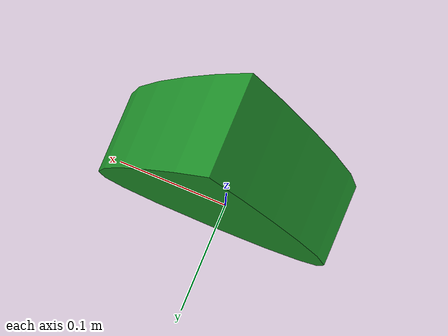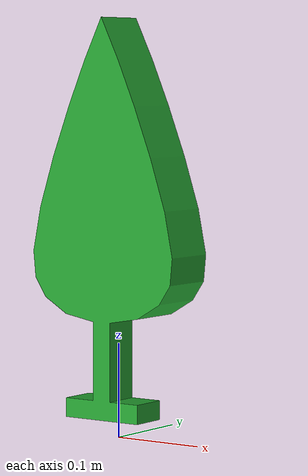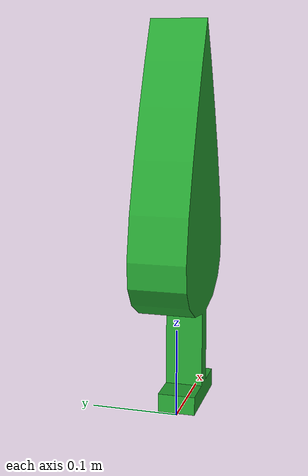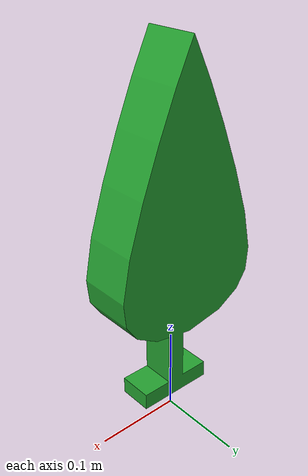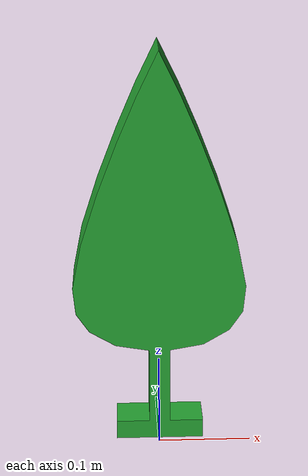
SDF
<?xml version="1.0" ?>
<sdf version="1.5">
  <model name="atree">
    <static>true</static>
    <link name="link">
      <visual name="visual">
        <pose>-0.0891 0.03105 0.022 1.570796 0 0</pose>
        <geometry>
          <mesh>
            <uri>file:///home/zf/catkin_ws/src/limo_gazebo_sim/meshes/tree.STL</uri>
            <scale>0.00135 0.00135 0.00135</scale>
          </mesh>
        </geometry>
        <material>
          <ambient>0.2 0.7 0.2 1</ambient>
          <diffuse>0.2 0.7 0.2 1</diffuse>
          <specular>0.1 0.1 0.1 1</specular>
          <script>
            <uri>file://media/materials/scripts/gazebo.material</uri>
            <name>Gazebo/Green</name>
          </script>
        </material>
      </visual>
      <collision name="collision">
        <pose>-0.0891 0.03105 0.022 1.570796 0 0</pose>
        <geometry>
          <mesh>
            <uri>file:///home/zf/catkin_ws/src/limo_gazebo_sim/meshes/tree.STL</uri>
            <scale>0.00135 0.00135 0.00135</scale>
          </mesh>
        </geometry>
      </collision>
    </link>
  </model>
</sdf>
